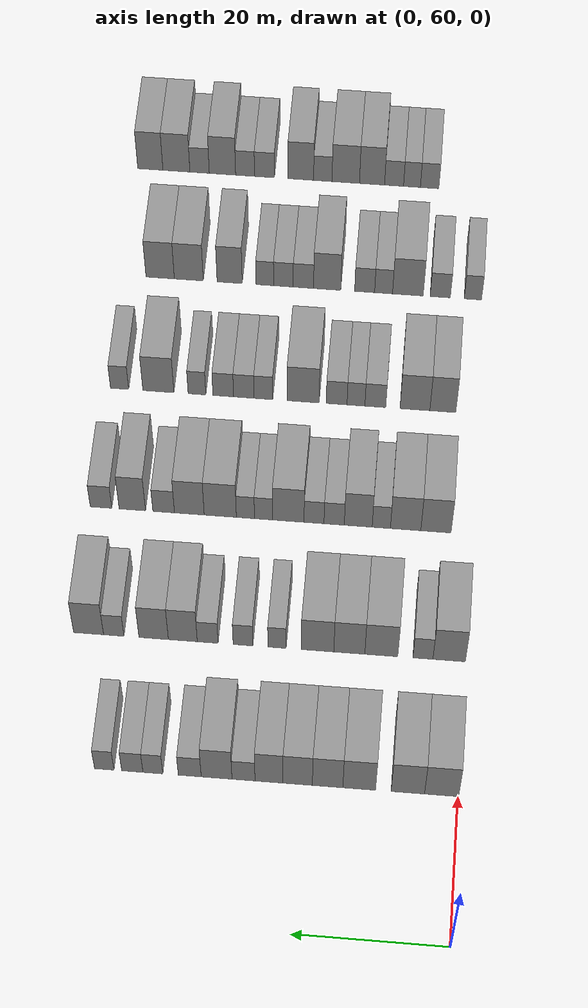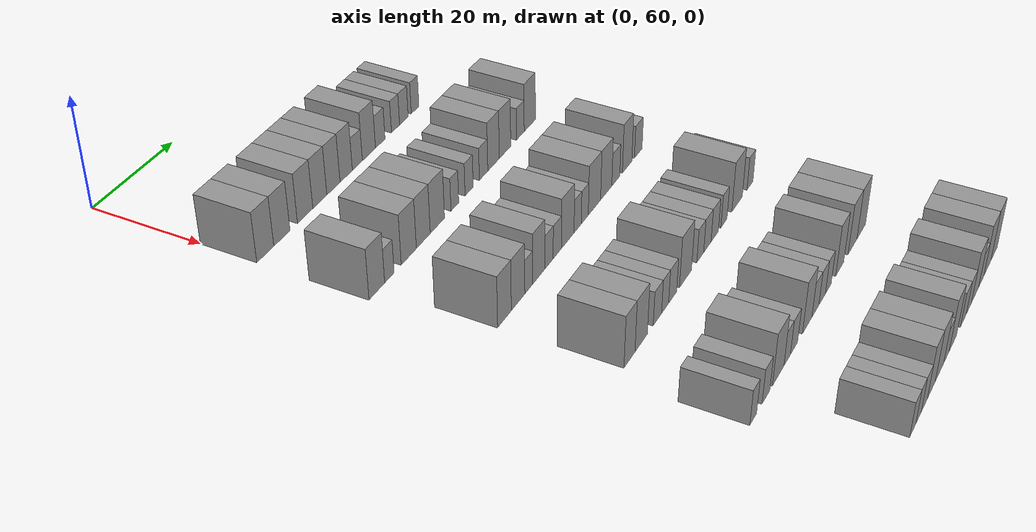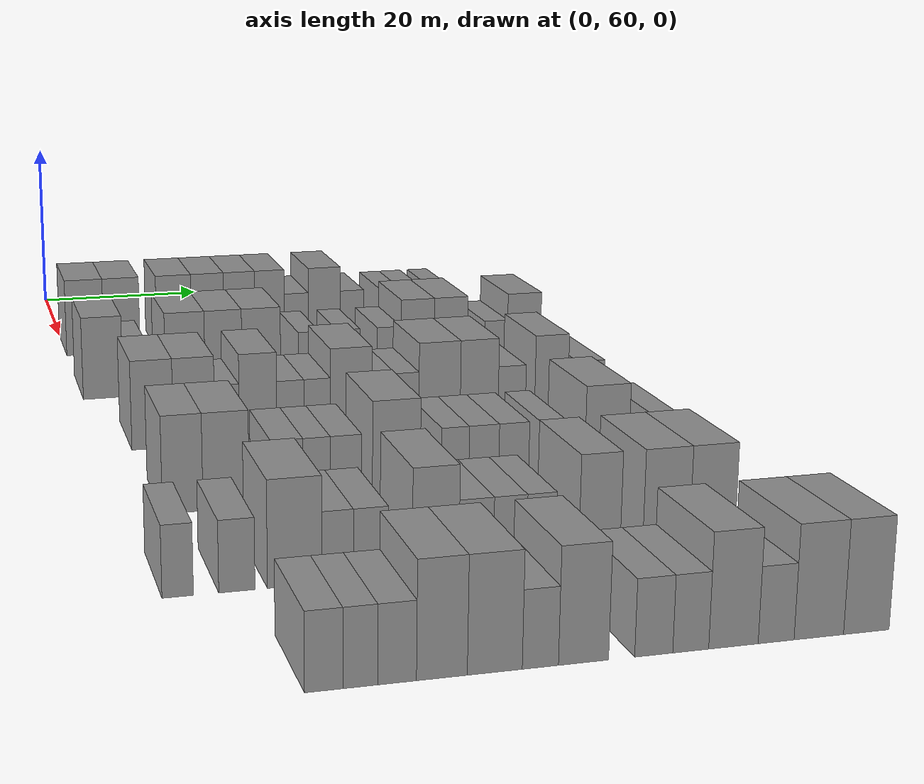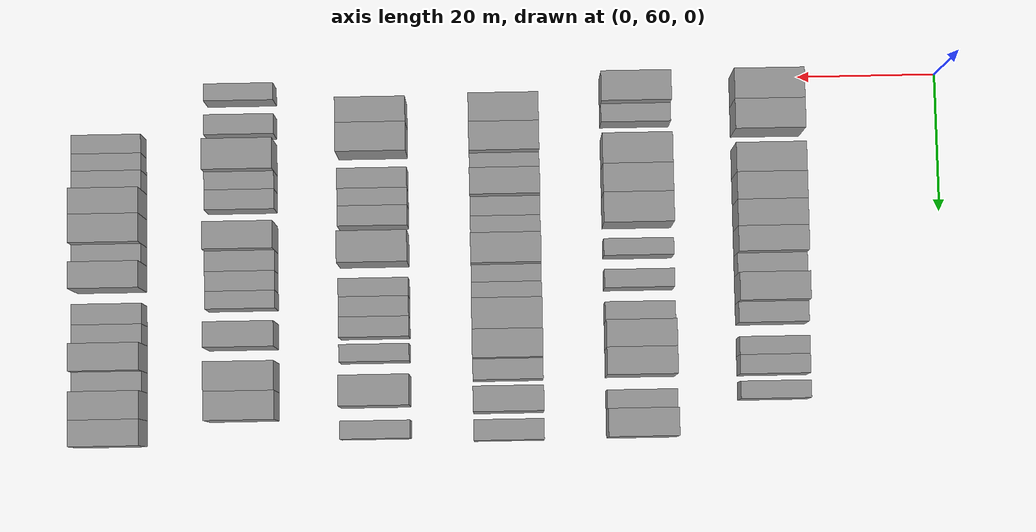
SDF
<sdf version="1.6">
 <world name="default">
  <model name="building_103">
   <static>1</static>
   <pose>25.0000 62.1673 0 0.000000 0.000000 0.000000</pose>
   <link name="link">
    <pose>0 0 4.50 0 0 0</pose>
    <collision name="collision"><geometry><box><size>10.0000 4.3727 9.0000</size></box></geometry></collision>
    <visual name="visual">
     <cast_shadows>0</cast_shadows>
     <geometry><box><size>10.0000 4.3727 9.0000</size></box></geometry>
     <material>
      <script>
       <uri>model://grey_wall/materials/scripts</uri>
       <uri>model://grey_wall/materials/textures</uri>
       <name>vrc/grey_wall</name>
      </script>
     </material>
    </visual>
   </link>
  </model>
  <model name="building_104">
   <static>1</static>
   <pose>25.0000 66.4941 0 0.000000 0.000000 0.000000</pose>
   <link name="link">
    <pose>0 0 4.50 0 0 0</pose>
    <collision name="collision"><geometry><box><size>10.0000 4.2809 9.0000</size></box></geometry></collision>
    <visual name="visual">
     <cast_shadows>0</cast_shadows>
     <geometry><box><size>10.0000 4.2809 9.0000</size></box></geometry>
     <material>
      <script>
       <uri>model://grey_wall/materials/scripts</uri>
       <uri>model://grey_wall/materials/textures</uri>
       <name>vrc/grey_wall</name>
      </script>
     </material>
    </visual>
   </link>
  </model>
  <model name="building_105">
   <static>1</static>
   <pose>25.0000 72.7339 0 0.000000 0.000000 0.000000</pose>
   <link name="link">
    <pose>0 0 4.50 0 0 0</pose>
    <collision name="collision"><geometry><box><size>10.0000 4.1987 9.0000</size></box></geometry></collision>
    <visual name="visual">
     <cast_shadows>0</cast_shadows>
     <geometry><box><size>10.0000 4.1987 9.0000</size></box></geometry>
     <material>
      <script>
       <uri>model://grey_wall/materials/scripts</uri>
       <uri>model://grey_wall/materials/textures</uri>
       <name>vrc/grey_wall</name>
      </script>
     </material>
    </visual>
   </link>
  </model>
  <model name="building_106">
   <static>1</static>
   <pose>25.0000 76.7936 0 0.000000 0.000000 0.000000</pose>
   <link name="link">
    <pose>0 0 4.50 0 0 0</pose>
    <collision name="collision"><geometry><box><size>10.0000 3.9207 9.0000</size></box></geometry></collision>
    <visual name="visual">
     <cast_shadows>0</cast_shadows>
     <geometry><box><size>10.0000 3.9207 9.0000</size></box></geometry>
     <material>
      <script>
       <uri>model://grey_wall/materials/scripts</uri>
       <uri>model://grey_wall/materials/textures</uri>
       <name>vrc/grey_wall</name>
      </script>
     </material>
    </visual>
   </link>
  </model>
  <model name="building_107">
   <static>1</static>
   <pose>25.0000 80.6412 0 0.000000 0.000000 0.000000</pose>
   <link name="link">
    <pose>0 0 4.50 0 0 0</pose>
    <collision name="collision"><geometry><box><size>10.0000 3.7744 9.0000</size></box></geometry></collision>
    <visual name="visual">
     <cast_shadows>0</cast_shadows>
     <geometry><box><size>10.0000 3.7744 9.0000</size></box></geometry>
     <material>
      <script>
       <uri>model://grey_wall/materials/scripts</uri>
       <uri>model://grey_wall/materials/textures</uri>
       <name>vrc/grey_wall</name>
      </script>
     </material>
    </visual>
   </link>
  </model>
  <model name="building_108">
   <static>1</static>
   <pose>25.0000 84.3327 0 0.000000 0.000000 0.000000</pose>
   <link name="link">
    <pose>0 0 4.50 0 0 0</pose>
    <collision name="collision"><geometry><box><size>10.0000 3.6086 9.0000</size></box></geometry></collision>
    <visual name="visual">
     <cast_shadows>0</cast_shadows>
     <geometry><box><size>10.0000 3.6086 9.0000</size></box></geometry>
     <material>
      <script>
       <uri>model://grey_wall/materials/scripts</uri>
       <uri>model://grey_wall/materials/textures</uri>
       <name>vrc/grey_wall</name>
      </script>
     </material>
    </visual>
   </link>
  </model>
  <model name="building_109">
   <static>1</static>
   <pose>25.0000 87.6232 0 0.000000 0.000000 0.000000</pose>
   <link name="link">
    <pose>0 0 3.00 0 0 0</pose>
    <collision name="collision"><geometry><box><size>10.0000 2.9723 6.0000</size></box></geometry></collision>
    <visual name="visual">
     <cast_shadows>0</cast_shadows>
     <geometry><box><size>10.0000 2.9723 6.0000</size></box></geometry>
     <material>
      <script>
       <uri>model://grey_wall/materials/scripts</uri>
       <uri>model://grey_wall/materials/textures</uri>
       <name>vrc/grey_wall</name>
      </script>
     </material>
    </visual>
   </link>
  </model>
  <model name="building_110">
   <static>1</static>
   <pose>25.0000 91.0939 0 0.000000 0.000000 0.000000</pose>
   <link name="link">
    <pose>0 0 4.50 0 0 0</pose>
    <collision name="collision"><geometry><box><size>10.0000 3.9692 9.0000</size></box></geometry></collision>
    <visual name="visual">
     <cast_shadows>0</cast_shadows>
     <geometry><box><size>10.0000 3.9692 9.0000</size></box></geometry>
     <material>
      <script>
       <uri>model://grey_wall/materials/scripts</uri>
       <uri>model://grey_wall/materials/textures</uri>
       <name>vrc/grey_wall</name>
      </script>
     </material>
    </visual>
   </link>
  </model>
  <model name="building_111">
   <static>1</static>
   <pose>25.0000 94.5590 0 0.000000 0.000000 0.000000</pose>
   <link name="link">
    <pose>0 0 3.00 0 0 0</pose>
    <collision name="collision"><geometry><box><size>10.0000 2.9611 6.0000</size></box></geometry></collision>
    <visual name="visual">
     <cast_shadows>0</cast_shadows>
     <geometry><box><size>10.0000 2.9611 6.0000</size></box></geometry>
     <material>
      <script>
       <uri>model://grey_wall/materials/scripts</uri>
       <uri>model://grey_wall/materials/textures</uri>
       <name>vrc/grey_wall</name>
      </script>
     </material>
    </visual>
   </link>
  </model>
  <model name="building_112">
   <static>1</static>
   <pose>25.0000 99.3228 0 0.000000 0.000000 0.000000</pose>
   <link name="link">
    <pose>0 0 3.00 0 0 0</pose>
    <collision name="collision"><geometry><box><size>10.0000 2.5666 6.0000</size></box></geometry></collision>
    <visual name="visual">
     <cast_shadows>0</cast_shadows>
     <geometry><box><size>10.0000 2.5666 6.0000</size></box></geometry>
     <material>
      <script>
       <uri>model://grey_wall/materials/scripts</uri>
       <uri>model://grey_wall/materials/textures</uri>
       <name>vrc/grey_wall</name>
      </script>
     </material>
    </visual>
   </link>
  </model>
  <model name="building_113">
   <static>1</static>
   <pose>25.0000 101.9807 0 0.000000 0.000000 0.000000</pose>
   <link name="link">
    <pose>0 0 3.00 0 0 0</pose>
    <collision name="collision"><geometry><box><size>10.0000 2.7491 6.0000</size></box></geometry></collision>
    <visual name="visual">
     <cast_shadows>0</cast_shadows>
     <geometry><box><size>10.0000 2.7491 6.0000</size></box></geometry>
     <material>
      <script>
       <uri>model://grey_wall/materials/scripts</uri>
       <uri>model://grey_wall/materials/textures</uri>
       <name>vrc/grey_wall</name>
      </script>
     </material>
    </visual>
   </link>
  </model>
  <model name="building_114">
   <static>1</static>
   <pose>25.0000 105.6142 0 0.000000 0.000000 0.000000</pose>
   <link name="link">
    <pose>0 0 3.00 0 0 0</pose>
    <collision name="collision"><geometry><box><size>10.0000 2.5178 6.0000</size></box></geometry></collision>
    <visual name="visual">
     <cast_shadows>0</cast_shadows>
     <geometry><box><size>10.0000 2.5178 6.0000</size></box></geometry>
     <material>
      <script>
       <uri>model://grey_wall/materials/scripts</uri>
       <uri>model://grey_wall/materials/textures</uri>
       <name>vrc/grey_wall</name>
      </script>
     </material>
    </visual>
   </link>
  </model>
  <model name="building_269">
   <static>1</static>
   <pose>44.0000 62.1444 0 0.000000 0.000000 0.000000</pose>
   <link name="link">
    <pose>0 0 4.50 0 0 0</pose>
    <collision name="collision"><geometry><box><size>10.0000 4.2817 9.0000</size></box></geometry></collision>
    <visual name="visual">
     <cast_shadows>0</cast_shadows>
     <geometry><box><size>10.0000 4.2817 9.0000</size></box></geometry>
     <material>
      <script>
       <uri>model://grey_wall/materials/scripts</uri>
       <uri>model://grey_wall/materials/textures</uri>
       <name>vrc/grey_wall</name>
      </script>
     </material>
    </visual>
   </link>
  </model>
  <model name="building_270">
   <static>1</static>
   <pose>44.0000 65.6032 0 0.000000 0.000000 0.000000</pose>
   <link name="link">
    <pose>0 0 3.00 0 0 0</pose>
    <collision name="collision"><geometry><box><size>10.0000 2.6360 6.0000</size></box></geometry></collision>
    <visual name="visual">
     <cast_shadows>0</cast_shadows>
     <geometry><box><size>10.0000 2.6360 6.0000</size></box></geometry>
     <material>
      <script>
       <uri>model://grey_wall/materials/scripts</uri>
       <uri>model://grey_wall/materials/textures</uri>
       <name>vrc/grey_wall</name>
      </script>
     </material>
    </visual>
   </link>
  </model>
  <model name="building_271">
   <static>1</static>
   <pose>44.0000 71.0985 0 0.000000 0.000000 0.000000</pose>
   <link name="link">
    <pose>0 0 4.50 0 0 0</pose>
    <collision name="collision"><geometry><box><size>10.0000 4.3546 9.0000</size></box></geometry></collision>
    <visual name="visual">
     <cast_shadows>0</cast_shadows>
     <geometry><box><size>10.0000 4.3546 9.0000</size></box></geometry>
     <material>
      <script>
       <uri>model://grey_wall/materials/scripts</uri>
       <uri>model://grey_wall/materials/textures</uri>
       <name>vrc/grey_wall</name>
      </script>
     </material>
    </visual>
   </link>
  </model>
  <model name="building_272">
   <static>1</static>
   <pose>44.0000 75.3268 0 0.000000 0.000000 0.000000</pose>
   <link name="link">
    <pose>0 0 4.50 0 0 0</pose>
    <collision name="collision"><geometry><box><size>10.0000 4.1020 9.0000</size></box></geometry></collision>
    <visual name="visual">
     <cast_shadows>0</cast_shadows>
     <geometry><box><size>10.0000 4.1020 9.0000</size></box></geometry>
     <material>
      <script>
       <uri>model://grey_wall/materials/scripts</uri>
       <uri>model://grey_wall/materials/textures</uri>
       <name>vrc/grey_wall</name>
      </script>
     </material>
    </visual>
   </link>
  </model>
  <model name="building_273">
   <static>1</static>
   <pose>44.0000 79.5381 0 0.000000 0.000000 0.000000</pose>
   <link name="link">
    <pose>0 0 4.50 0 0 0</pose>
    <collision name="collision"><geometry><box><size>10.0000 4.3207 9.0000</size></box></geometry></collision>
    <visual name="visual">
     <cast_shadows>0</cast_shadows>
     <geometry><box><size>10.0000 4.3207 9.0000</size></box></geometry>
     <material>
      <script>
       <uri>model://grey_wall/materials/scripts</uri>
       <uri>model://grey_wall/materials/textures</uri>
       <name>vrc/grey_wall</name>
      </script>
     </material>
    </visual>
   </link>
  </model>
  <model name="building_274">
   <static>1</static>
   <pose>44.0000 84.9060 0 0.000000 0.000000 0.000000</pose>
   <link name="link">
    <pose>0 0 3.00 0 0 0</pose>
    <collision name="collision"><geometry><box><size>10.0000 2.4150 6.0000</size></box></geometry></collision>
    <visual name="visual">
     <cast_shadows>0</cast_shadows>
     <geometry><box><size>10.0000 2.4150 6.0000</size></box></geometry>
     <material>
      <script>
       <uri>model://grey_wall/materials/scripts</uri>
       <uri>model://grey_wall/materials/textures</uri>
       <name>vrc/grey_wall</name>
      </script>
     </material>
    </visual>
   </link>
  </model>
  <model name="building_275">
   <static>1</static>
   <pose>44.0000 89.4211 0 0.000000 0.000000 0.000000</pose>
   <link name="link">
    <pose>0 0 3.00 0 0 0</pose>
    <collision name="collision"><geometry><box><size>10.0000 2.6153 6.0000</size></box></geometry></collision>
    <visual name="visual">
     <cast_shadows>0</cast_shadows>
     <geometry><box><size>10.0000 2.6153 6.0000</size></box></geometry>
     <material>
      <script>
       <uri>model://grey_wall/materials/scripts</uri>
       <uri>model://grey_wall/materials/textures</uri>
       <name>vrc/grey_wall</name>
      </script>
     </material>
    </visual>
   </link>
  </model>
  <model name="building_276">
   <static>1</static>
   <pose>44.0000 94.1112 0 0.000000 0.000000 0.000000</pose>
   <link name="link">
    <pose>0 0 3.00 0 0 0</pose>
    <collision name="collision"><geometry><box><size>10.0000 2.7648 6.0000</size></box></geometry></collision>
    <visual name="visual">
     <cast_shadows>0</cast_shadows>
     <geometry><box><size>10.0000 2.7648 6.0000</size></box></geometry>
     <material>
      <script>
       <uri>model://grey_wall/materials/scripts</uri>
       <uri>model://grey_wall/materials/textures</uri>
       <name>vrc/grey_wall</name>
      </script>
     </material>
    </visual>
   </link>
  </model>
  <model name="building_277">
   <static>1</static>
   <pose>44.0000 97.4187 0 0.000000 0.000000 0.000000</pose>
   <link name="link">
    <pose>0 0 4.50 0 0 0</pose>
    <collision name="collision"><geometry><box><size>10.0000 3.8502 9.0000</size></box></geometry></collision>
    <visual name="visual">
     <cast_shadows>0</cast_shadows>
     <geometry><box><size>10.0000 3.8502 9.0000</size></box></geometry>
     <material>
      <script>
       <uri>model://grey_wall/materials/scripts</uri>
       <uri>model://grey_wall/materials/textures</uri>
       <name>vrc/grey_wall</name>
      </script>
     </material>
    </visual>
   </link>
  </model>
  <model name="building_278">
   <static>1</static>
   <pose>44.0000 101.3003 0 0.000000 0.000000 0.000000</pose>
   <link name="link">
    <pose>0 0 4.50 0 0 0</pose>
    <collision name="collision"><geometry><box><size>10.0000 3.9130 9.0000</size></box></geometry></collision>
    <visual name="visual">
     <cast_shadows>0</cast_shadows>
     <geometry><box><size>10.0000 3.9130 9.0000</size></box></geometry>
     <material>
      <script>
       <uri>model://grey_wall/materials/scripts</uri>
       <uri>model://grey_wall/materials/textures</uri>
       <name>vrc/grey_wall</name>
      </script>
     </material>
    </visual>
   </link>
  </model>
  <model name="building_279">
   <static>1</static>
   <pose>44.0000 106.6169 0 0.000000 0.000000 0.000000</pose>
   <link name="link">
    <pose>0 0 3.00 0 0 0</pose>
    <collision name="collision"><geometry><box><size>10.0000 2.7202 6.0000</size></box></geometry></collision>
    <visual name="visual">
     <cast_shadows>0</cast_shadows>
     <geometry><box><size>10.0000 2.7202 6.0000</size></box></geometry>
     <material>
      <script>
       <uri>model://grey_wall/materials/scripts</uri>
       <uri>model://grey_wall/materials/textures</uri>
       <name>vrc/grey_wall</name>
      </script>
     </material>
    </visual>
   </link>
  </model>
  <model name="building_280">
   <static>1</static>
   <pose>44.0000 109.9729 0 0.000000 0.000000 0.000000</pose>
   <link name="link">
    <pose>0 0 4.50 0 0 0</pose>
    <collision name="collision"><geometry><box><size>10.0000 3.9918 9.0000</size></box></geometry></collision>
    <visual name="visual">
     <cast_shadows>0</cast_shadows>
     <geometry><box><size>10.0000 3.9918 9.0000</size></box></geometry>
     <material>
      <script>
       <uri>model://grey_wall/materials/scripts</uri>
       <uri>model://grey_wall/materials/textures</uri>
       <name>vrc/grey_wall</name>
      </script>
     </material>
    </visual>
   </link>
  </model>
  <model name="building_446">
   <static>1</static>
   <pose>63.0000 64.8793 0 0.000000 0.000000 0.000000</pose>
   <link name="link">
    <pose>0 0 4.50 0 0 0</pose>
    <collision name="collision"><geometry><box><size>10.0000 4.1039 9.0000</size></box></geometry></collision>
    <visual name="visual">
     <cast_shadows>0</cast_shadows>
     <geometry><box><size>10.0000 4.1039 9.0000</size></box></geometry>
     <material>
      <script>
       <uri>model://grey_wall/materials/scripts</uri>
       <uri>model://grey_wall/materials/textures</uri>
       <name>vrc/grey_wall</name>
      </script>
     </material>
    </visual>
   </link>
  </model>
  <model name="building_447">
   <static>1</static>
   <pose>63.0000 68.9979 0 0.000000 0.000000 0.000000</pose>
   <link name="link">
    <pose>0 0 4.50 0 0 0</pose>
    <collision name="collision"><geometry><box><size>10.0000 4.1334 9.0000</size></box></geometry></collision>
    <visual name="visual">
     <cast_shadows>0</cast_shadows>
     <geometry><box><size>10.0000 4.1334 9.0000</size></box></geometry>
     <material>
      <script>
       <uri>model://grey_wall/materials/scripts</uri>
       <uri>model://grey_wall/materials/textures</uri>
       <name>vrc/grey_wall</name>
      </script>
     </material>
    </visual>
   </link>
  </model>
  <model name="building_448">
   <static>1</static>
   <pose>63.0000 72.3037 0 0.000000 0.000000 0.000000</pose>
   <link name="link">
    <pose>0 0 3.00 0 0 0</pose>
    <collision name="collision"><geometry><box><size>10.0000 2.4780 6.0000</size></box></geometry></collision>
    <visual name="visual">
     <cast_shadows>0</cast_shadows>
     <geometry><box><size>10.0000 2.4780 6.0000</size></box></geometry>
     <material>
      <script>
       <uri>model://grey_wall/materials/scripts</uri>
       <uri>model://grey_wall/materials/textures</uri>
       <name>vrc/grey_wall</name>
      </script>
     </material>
    </visual>
   </link>
  </model>
  <model name="building_449">
   <static>1</static>
   <pose>63.0000 75.4395 0 0.000000 0.000000 0.000000</pose>
   <link name="link">
    <pose>0 0 4.50 0 0 0</pose>
    <collision name="collision"><geometry><box><size>10.0000 3.7937 9.0000</size></box></geometry></collision>
    <visual name="visual">
     <cast_shadows>0</cast_shadows>
     <geometry><box><size>10.0000 3.7937 9.0000</size></box></geometry>
     <material>
      <script>
       <uri>model://grey_wall/materials/scripts</uri>
       <uri>model://grey_wall/materials/textures</uri>
       <name>vrc/grey_wall</name>
      </script>
     </material>
    </visual>
   </link>
  </model>
  <model name="building_450">
   <static>1</static>
   <pose>63.0000 78.7199 0 0.000000 0.000000 0.000000</pose>
   <link name="link">
    <pose>0 0 3.00 0 0 0</pose>
    <collision name="collision"><geometry><box><size>10.0000 2.7670 6.0000</size></box></geometry></collision>
    <visual name="visual">
     <cast_shadows>0</cast_shadows>
     <geometry><box><size>10.0000 2.7670 6.0000</size></box></geometry>
     <material>
      <script>
       <uri>model://grey_wall/materials/scripts</uri>
       <uri>model://grey_wall/materials/textures</uri>
       <name>vrc/grey_wall</name>
      </script>
     </material>
    </visual>
   </link>
  </model>
  <model name="building_451">
   <static>1</static>
   <pose>63.0000 81.4618 0 0.000000 0.000000 0.000000</pose>
   <link name="link">
    <pose>0 0 3.00 0 0 0</pose>
    <collision name="collision"><geometry><box><size>10.0000 2.7170 6.0000</size></box></geometry></collision>
    <visual name="visual">
     <cast_shadows>0</cast_shadows>
     <geometry><box><size>10.0000 2.7170 6.0000</size></box></geometry>
     <material>
      <script>
       <uri>model://grey_wall/materials/scripts</uri>
       <uri>model://grey_wall/materials/textures</uri>
       <name>vrc/grey_wall</name>
      </script>
     </material>
    </visual>
   </link>
  </model>
  <model name="building_452">
   <static>1</static>
   <pose>63.0000 84.9643 0 0.000000 0.000000 0.000000</pose>
   <link name="link">
    <pose>0 0 4.50 0 0 0</pose>
    <collision name="collision"><geometry><box><size>10.0000 4.2878 9.0000</size></box></geometry></collision>
    <visual name="visual">
     <cast_shadows>0</cast_shadows>
     <geometry><box><size>10.0000 4.2878 9.0000</size></box></geometry>
     <material>
      <script>
       <uri>model://grey_wall/materials/scripts</uri>
       <uri>model://grey_wall/materials/textures</uri>
       <name>vrc/grey_wall</name>
      </script>
     </material>
    </visual>
   </link>
  </model>
  <model name="building_453">
   <static>1</static>
   <pose>63.0000 88.3450 0 0.000000 0.000000 0.000000</pose>
   <link name="link">
    <pose>0 0 3.00 0 0 0</pose>
    <collision name="collision"><geometry><box><size>10.0000 2.4737 6.0000</size></box></geometry></collision>
    <visual name="visual">
     <cast_shadows>0</cast_shadows>
     <geometry><box><size>10.0000 2.4737 6.0000</size></box></geometry>
     <material>
      <script>
       <uri>model://grey_wall/materials/scripts</uri>
       <uri>model://grey_wall/materials/textures</uri>
       <name>vrc/grey_wall</name>
      </script>
     </material>
    </visual>
   </link>
  </model>
  <model name="building_454">
   <static>1</static>
   <pose>63.0000 90.8206 0 0.000000 0.000000 0.000000</pose>
   <link name="link">
    <pose>0 0 3.00 0 0 0</pose>
    <collision name="collision"><geometry><box><size>10.0000 2.4775 6.0000</size></box></geometry></collision>
    <visual name="visual">
     <cast_shadows>0</cast_shadows>
     <geometry><box><size>10.0000 2.4775 6.0000</size></box></geometry>
     <material>
      <script>
       <uri>model://grey_wall/materials/scripts</uri>
       <uri>model://grey_wall/materials/textures</uri>
       <name>vrc/grey_wall</name>
      </script>
     </material>
    </visual>
   </link>
  </model>
  <model name="building_455">
   <static>1</static>
   <pose>63.0000 94.2594 0 0.000000 0.000000 0.000000</pose>
   <link name="link">
    <pose>0 0 4.50 0 0 0</pose>
    <collision name="collision"><geometry><box><size>10.0000 4.4001 9.0000</size></box></geometry></collision>
    <visual name="visual">
     <cast_shadows>0</cast_shadows>
     <geometry><box><size>10.0000 4.4001 9.0000</size></box></geometry>
     <material>
      <script>
       <uri>model://grey_wall/materials/scripts</uri>
       <uri>model://grey_wall/materials/textures</uri>
       <name>vrc/grey_wall</name>
      </script>
     </material>
    </visual>
   </link>
  </model>
  <model name="building_456">
   <static>1</static>
   <pose>63.0000 98.4944 0 0.000000 0.000000 0.000000</pose>
   <link name="link">
    <pose>0 0 4.50 0 0 0</pose>
    <collision name="collision"><geometry><box><size>10.0000 4.0699 9.0000</size></box></geometry></collision>
    <visual name="visual">
     <cast_shadows>0</cast_shadows>
     <geometry><box><size>10.0000 4.0699 9.0000</size></box></geometry>
     <material>
      <script>
       <uri>model://grey_wall/materials/scripts</uri>
       <uri>model://grey_wall/materials/textures</uri>
       <name>vrc/grey_wall</name>
      </script>
     </material>
    </visual>
   </link>
  </model>
  <model name="building_457">
   <static>1</static>
   <pose>63.0000 102.0103 0 0.000000 0.000000 0.000000</pose>
   <link name="link">
    <pose>0 0 3.00 0 0 0</pose>
    <collision name="collision"><geometry><box><size>10.0000 2.9620 6.0000</size></box></geometry></collision>
    <visual name="visual">
     <cast_shadows>0</cast_shadows>
     <geometry><box><size>10.0000 2.9620 6.0000</size></box></geometry>
     <material>
      <script>
       <uri>model://grey_wall/materials/scripts</uri>
       <uri>model://grey_wall/materials/textures</uri>
       <name>vrc/grey_wall</name>
      </script>
     </material>
    </visual>
   </link>
  </model>
  <model name="building_458">
   <static>1</static>
   <pose>63.0000 106.3024 0 0.000000 0.000000 0.000000</pose>
   <link name="link">
    <pose>0 0 4.50 0 0 0</pose>
    <collision name="collision"><geometry><box><size>10.0000 3.6221 9.0000</size></box></geometry></collision>
    <visual name="visual">
     <cast_shadows>0</cast_shadows>
     <geometry><box><size>10.0000 3.6221 9.0000</size></box></geometry>
     <material>
      <script>
       <uri>model://grey_wall/materials/scripts</uri>
       <uri>model://grey_wall/materials/textures</uri>
       <name>vrc/grey_wall</name>
      </script>
     </material>
    </visual>
   </link>
  </model>
  <model name="building_459">
   <static>1</static>
   <pose>63.0000 110.5969 0 0.000000 0.000000 0.000000</pose>
   <link name="link">
    <pose>0 0 3.00 0 0 0</pose>
    <collision name="collision"><geometry><box><size>10.0000 2.9669 6.0000</size></box></geometry></collision>
    <visual name="visual">
     <cast_shadows>0</cast_shadows>
     <geometry><box><size>10.0000 2.9669 6.0000</size></box></geometry>
     <material>
      <script>
       <uri>model://grey_wall/materials/scripts</uri>
       <uri>model://grey_wall/materials/textures</uri>
       <name>vrc/grey_wall</name>
      </script>
     </material>
    </visual>
   </link>
  </model>
  <model name="building_620">
   <static>1</static>
   <pose>82.0000 64.9065 0 0.000000 0.000000 0.000000</pose>
   <link name="link">
    <pose>0 0 4.50 0 0 0</pose>
    <collision name="collision"><geometry><box><size>10.0000 3.6197 9.0000</size></box></geometry></collision>
    <visual name="visual">
     <cast_shadows>0</cast_shadows>
     <geometry><box><size>10.0000 3.6197 9.0000</size></box></geometry>
     <material>
      <script>
       <uri>model://grey_wall/materials/scripts</uri>
       <uri>model://grey_wall/materials/textures</uri>
       <name>vrc/grey_wall</name>
      </script>
     </material>
    </visual>
   </link>
  </model>
  <model name="building_621">
   <static>1</static>
   <pose>82.0000 68.7985 0 0.000000 0.000000 0.000000</pose>
   <link name="link">
    <pose>0 0 4.50 0 0 0</pose>
    <collision name="collision"><geometry><box><size>10.0000 4.1642 9.0000</size></box></geometry></collision>
    <visual name="visual">
     <cast_shadows>0</cast_shadows>
     <geometry><box><size>10.0000 4.1642 9.0000</size></box></geometry>
     <material>
      <script>
       <uri>model://grey_wall/materials/scripts</uri>
       <uri>model://grey_wall/materials/textures</uri>
       <name>vrc/grey_wall</name>
      </script>
     </material>
    </visual>
   </link>
  </model>
  <model name="building_622">
   <static>1</static>
   <pose>82.0000 74.3374 0 0.000000 0.000000 0.000000</pose>
   <link name="link">
    <pose>0 0 3.00 0 0 0</pose>
    <collision name="collision"><geometry><box><size>10.0000 2.9136 6.0000</size></box></geometry></collision>
    <visual name="visual">
     <cast_shadows>0</cast_shadows>
     <geometry><box><size>10.0000 2.9136 6.0000</size></box></geometry>
     <material>
      <script>
       <uri>model://grey_wall/materials/scripts</uri>
       <uri>model://grey_wall/materials/textures</uri>
       <name>vrc/grey_wall</name>
      </script>
     </material>
    </visual>
   </link>
  </model>
  <model name="building_623">
   <static>1</static>
   <pose>82.0000 77.0466 0 0.000000 0.000000 0.000000</pose>
   <link name="link">
    <pose>0 0 3.00 0 0 0</pose>
    <collision name="collision"><geometry><box><size>10.0000 2.5049 6.0000</size></box></geometry></collision>
    <visual name="visual">
     <cast_shadows>0</cast_shadows>
     <geometry><box><size>10.0000 2.5049 6.0000</size></box></geometry>
     <material>
      <script>
       <uri>model://grey_wall/materials/scripts</uri>
       <uri>model://grey_wall/materials/textures</uri>
       <name>vrc/grey_wall</name>
      </script>
     </material>
    </visual>
   </link>
  </model>
  <model name="building_624">
   <static>1</static>
   <pose>82.0000 79.7543 0 0.000000 0.000000 0.000000</pose>
   <link name="link">
    <pose>0 0 3.00 0 0 0</pose>
    <collision name="collision"><geometry><box><size>10.0000 2.9105 6.0000</size></box></geometry></collision>
    <visual name="visual">
     <cast_shadows>0</cast_shadows>
     <geometry><box><size>10.0000 2.9105 6.0000</size></box></geometry>
     <material>
      <script>
       <uri>model://grey_wall/materials/scripts</uri>
       <uri>model://grey_wall/materials/textures</uri>
       <name>vrc/grey_wall</name>
      </script>
     </material>
    </visual>
   </link>
  </model>
  <model name="building_625">
   <static>1</static>
   <pose>82.0000 84.4580 0 0.000000 0.000000 0.000000</pose>
   <link name="link">
    <pose>0 0 4.50 0 0 0</pose>
    <collision name="collision"><geometry><box><size>10.0000 4.4968 9.0000</size></box></geometry></collision>
    <visual name="visual">
     <cast_shadows>0</cast_shadows>
     <geometry><box><size>10.0000 4.4968 9.0000</size></box></geometry>
     <material>
      <script>
       <uri>model://grey_wall/materials/scripts</uri>
       <uri>model://grey_wall/materials/textures</uri>
       <name>vrc/grey_wall</name>
      </script>
     </material>
    </visual>
   </link>
  </model>
  <model name="building_626">
   <static>1</static>
   <pose>82.0000 90.0161 0 0.000000 0.000000 0.000000</pose>
   <link name="link">
    <pose>0 0 3.00 0 0 0</pose>
    <collision name="collision"><geometry><box><size>10.0000 2.6194 6.0000</size></box></geometry></collision>
    <visual name="visual">
     <cast_shadows>0</cast_shadows>
     <geometry><box><size>10.0000 2.6194 6.0000</size></box></geometry>
     <material>
      <script>
       <uri>model://grey_wall/materials/scripts</uri>
       <uri>model://grey_wall/materials/textures</uri>
       <name>vrc/grey_wall</name>
      </script>
     </material>
    </visual>
   </link>
  </model>
  <model name="building_627">
   <static>1</static>
   <pose>82.0000 92.7649 0 0.000000 0.000000 0.000000</pose>
   <link name="link">
    <pose>0 0 3.00 0 0 0</pose>
    <collision name="collision"><geometry><box><size>10.0000 2.8783 6.0000</size></box></geometry></collision>
    <visual name="visual">
     <cast_shadows>0</cast_shadows>
     <geometry><box><size>10.0000 2.8783 6.0000</size></box></geometry>
     <material>
      <script>
       <uri>model://grey_wall/materials/scripts</uri>
       <uri>model://grey_wall/materials/textures</uri>
       <name>vrc/grey_wall</name>
      </script>
     </material>
    </visual>
   </link>
  </model>
  <model name="building_628">
   <static>1</static>
   <pose>82.0000 95.6585 0 0.000000 0.000000 0.000000</pose>
   <link name="link">
    <pose>0 0 3.00 0 0 0</pose>
    <collision name="collision"><geometry><box><size>10.0000 2.9089 6.0000</size></box></geometry></collision>
    <visual name="visual">
     <cast_shadows>0</cast_shadows>
     <geometry><box><size>10.0000 2.9089 6.0000</size></box></geometry>
     <material>
      <script>
       <uri>model://grey_wall/materials/scripts</uri>
       <uri>model://grey_wall/materials/textures</uri>
       <name>vrc/grey_wall</name>
      </script>
     </material>
    </visual>
   </link>
  </model>
  <model name="building_629">
   <static>1</static>
   <pose>82.0000 99.3581 0 0.000000 0.000000 0.000000</pose>
   <link name="link">
    <pose>0 0 3.00 0 0 0</pose>
    <collision name="collision"><geometry><box><size>10.0000 2.4903 6.0000</size></box></geometry></collision>
    <visual name="visual">
     <cast_shadows>0</cast_shadows>
     <geometry><box><size>10.0000 2.4903 6.0000</size></box></geometry>
     <material>
      <script>
       <uri>model://grey_wall/materials/scripts</uri>
       <uri>model://grey_wall/materials/textures</uri>
       <name>vrc/grey_wall</name>
      </script>
     </material>
    </visual>
   </link>
  </model>
  <model name="building_630">
   <static>1</static>
   <pose>82.0000 104.7890 0 0.000000 0.000000 0.000000</pose>
   <link name="link">
    <pose>0 0 4.50 0 0 0</pose>
    <collision name="collision"><geometry><box><size>10.0000 4.3715 9.0000</size></box></geometry></collision>
    <visual name="visual">
     <cast_shadows>0</cast_shadows>
     <geometry><box><size>10.0000 4.3715 9.0000</size></box></geometry>
     <material>
      <script>
       <uri>model://grey_wall/materials/scripts</uri>
       <uri>model://grey_wall/materials/textures</uri>
       <name>vrc/grey_wall</name>
      </script>
     </material>
    </visual>
   </link>
  </model>
  <model name="building_631">
   <static>1</static>
   <pose>82.0000 110.2574 0 0.000000 0.000000 0.000000</pose>
   <link name="link">
    <pose>0 0 3.00 0 0 0</pose>
    <collision name="collision"><geometry><box><size>10.0000 2.5652 6.0000</size></box></geometry></collision>
    <visual name="visual">
     <cast_shadows>0</cast_shadows>
     <geometry><box><size>10.0000 2.5652 6.0000</size></box></geometry>
     <material>
      <script>
       <uri>model://grey_wall/materials/scripts</uri>
       <uri>model://grey_wall/materials/textures</uri>
       <name>vrc/grey_wall</name>
      </script>
     </material>
    </visual>
   </link>
  </model>
  <model name="building_793">
   <static>1</static>
   <pose>101.0000 61.5672 0 0.000000 0.000000 0.000000</pose>
   <link name="link">
    <pose>0 0 3.00 0 0 0</pose>
    <collision name="collision"><geometry><box><size>10.0000 2.4685 6.0000</size></box></geometry></collision>
    <visual name="visual">
     <cast_shadows>0</cast_shadows>
     <geometry><box><size>10.0000 2.4685 6.0000</size></box></geometry>
     <material>
      <script>
       <uri>model://grey_wall/materials/scripts</uri>
       <uri>model://grey_wall/materials/textures</uri>
       <name>vrc/grey_wall</name>
      </script>
     </material>
    </visual>
   </link>
  </model>
  <model name="building_794">
   <static>1</static>
   <pose>101.0000 66.2450 0 0.000000 0.000000 0.000000</pose>
   <link name="link">
    <pose>0 0 3.00 0 0 0</pose>
    <collision name="collision"><geometry><box><size>10.0000 2.8871 6.0000</size></box></geometry></collision>
    <visual name="visual">
     <cast_shadows>0</cast_shadows>
     <geometry><box><size>10.0000 2.8871 6.0000</size></box></geometry>
     <material>
      <script>
       <uri>model://grey_wall/materials/scripts</uri>
       <uri>model://grey_wall/materials/textures</uri>
       <name>vrc/grey_wall</name>
      </script>
     </material>
    </visual>
   </link>
  </model>
  <model name="building_795">
   <static>1</static>
   <pose>101.0000 70.8891 0 0.000000 0.000000 0.000000</pose>
   <link name="link">
    <pose>0 0 4.50 0 0 0</pose>
    <collision name="collision"><geometry><box><size>10.0000 4.4011 9.0000</size></box></geometry></collision>
    <visual name="visual">
     <cast_shadows>0</cast_shadows>
     <geometry><box><size>10.0000 4.4011 9.0000</size></box></geometry>
     <material>
      <script>
       <uri>model://grey_wall/materials/scripts</uri>
       <uri>model://grey_wall/materials/textures</uri>
       <name>vrc/grey_wall</name>
      </script>
     </material>
    </visual>
   </link>
  </model>
  <model name="building_796">
   <static>1</static>
   <pose>101.0000 74.3769 0 0.000000 0.000000 0.000000</pose>
   <link name="link">
    <pose>0 0 3.00 0 0 0</pose>
    <collision name="collision"><geometry><box><size>10.0000 2.5745 6.0000</size></box></geometry></collision>
    <visual name="visual">
     <cast_shadows>0</cast_shadows>
     <geometry><box><size>10.0000 2.5745 6.0000</size></box></geometry>
     <material>
      <script>
       <uri>model://grey_wall/materials/scripts</uri>
       <uri>model://grey_wall/materials/textures</uri>
       <name>vrc/grey_wall</name>
      </script>
     </material>
    </visual>
   </link>
  </model>
  <model name="building_797">
   <static>1</static>
   <pose>101.0000 77.0987 0 0.000000 0.000000 0.000000</pose>
   <link name="link">
    <pose>0 0 3.00 0 0 0</pose>
    <collision name="collision"><geometry><box><size>10.0000 2.8692 6.0000</size></box></geometry></collision>
    <visual name="visual">
     <cast_shadows>0</cast_shadows>
     <geometry><box><size>10.0000 2.8692 6.0000</size></box></geometry>
     <material>
      <script>
       <uri>model://grey_wall/materials/scripts</uri>
       <uri>model://grey_wall/materials/textures</uri>
       <name>vrc/grey_wall</name>
      </script>
     </material>
    </visual>
   </link>
  </model>
  <model name="building_798">
   <static>1</static>
   <pose>101.0000 82.4894 0 0.000000 0.000000 0.000000</pose>
   <link name="link">
    <pose>0 0 4.50 0 0 0</pose>
    <collision name="collision"><geometry><box><size>10.0000 3.9121 9.0000</size></box></geometry></collision>
    <visual name="visual">
     <cast_shadows>0</cast_shadows>
     <geometry><box><size>10.0000 3.9121 9.0000</size></box></geometry>
     <material>
      <script>
       <uri>model://grey_wall/materials/scripts</uri>
       <uri>model://grey_wall/materials/textures</uri>
       <name>vrc/grey_wall</name>
      </script>
     </material>
    </visual>
   </link>
  </model>
  <model name="building_799">
   <static>1</static>
   <pose>101.0000 85.9104 0 0.000000 0.000000 0.000000</pose>
   <link name="link">
    <pose>0 0 3.00 0 0 0</pose>
    <collision name="collision"><geometry><box><size>10.0000 2.9300 6.0000</size></box></geometry></collision>
    <visual name="visual">
     <cast_shadows>0</cast_shadows>
     <geometry><box><size>10.0000 2.9300 6.0000</size></box></geometry>
     <material>
      <script>
       <uri>model://grey_wall/materials/scripts</uri>
       <uri>model://grey_wall/materials/textures</uri>
       <name>vrc/grey_wall</name>
      </script>
     </material>
    </visual>
   </link>
  </model>
  <model name="building_800">
   <static>1</static>
   <pose>101.0000 88.7899 0 0.000000 0.000000 0.000000</pose>
   <link name="link">
    <pose>0 0 3.00 0 0 0</pose>
    <collision name="collision"><geometry><box><size>10.0000 2.8289 6.0000</size></box></geometry></collision>
    <visual name="visual">
     <cast_shadows>0</cast_shadows>
     <geometry><box><size>10.0000 2.8289 6.0000</size></box></geometry>
     <material>
      <script>
       <uri>model://grey_wall/materials/scripts</uri>
       <uri>model://grey_wall/materials/textures</uri>
       <name>vrc/grey_wall</name>
      </script>
     </material>
    </visual>
   </link>
  </model>
  <model name="building_801">
   <static>1</static>
   <pose>101.0000 91.4685 0 0.000000 0.000000 0.000000</pose>
   <link name="link">
    <pose>0 0 3.00 0 0 0</pose>
    <collision name="collision"><geometry><box><size>10.0000 2.5284 6.0000</size></box></geometry></collision>
    <visual name="visual">
     <cast_shadows>0</cast_shadows>
     <geometry><box><size>10.0000 2.5284 6.0000</size></box></geometry>
     <material>
      <script>
       <uri>model://grey_wall/materials/scripts</uri>
       <uri>model://grey_wall/materials/textures</uri>
       <name>vrc/grey_wall</name>
      </script>
     </material>
    </visual>
   </link>
  </model>
  <model name="building_802">
   <static>1</static>
   <pose>101.0000 96.5465 0 0.000000 0.000000 0.000000</pose>
   <link name="link">
    <pose>0 0 4.50 0 0 0</pose>
    <collision name="collision"><geometry><box><size>10.0000 3.6277 9.0000</size></box></geometry></collision>
    <visual name="visual">
     <cast_shadows>0</cast_shadows>
     <geometry><box><size>10.0000 3.6277 9.0000</size></box></geometry>
     <material>
      <script>
       <uri>model://grey_wall/materials/scripts</uri>
       <uri>model://grey_wall/materials/textures</uri>
       <name>vrc/grey_wall</name>
      </script>
     </material>
    </visual>
   </link>
  </model>
  <model name="building_803">
   <static>1</static>
   <pose>101.0000 102.4520 0 0.000000 0.000000 0.000000</pose>
   <link name="link">
    <pose>0 0 4.50 0 0 0</pose>
    <collision name="collision"><geometry><box><size>10.0000 4.1833 9.0000</size></box></geometry></collision>
    <visual name="visual">
     <cast_shadows>0</cast_shadows>
     <geometry><box><size>10.0000 4.1833 9.0000</size></box></geometry>
     <material>
      <script>
       <uri>model://grey_wall/materials/scripts</uri>
       <uri>model://grey_wall/materials/textures</uri>
       <name>vrc/grey_wall</name>
      </script>
     </material>
    </visual>
   </link>
  </model>
  <model name="building_804">
   <static>1</static>
   <pose>101.0000 106.5949 0 0.000000 0.000000 0.000000</pose>
   <link name="link">
    <pose>0 0 4.50 0 0 0</pose>
    <collision name="collision"><geometry><box><size>10.0000 4.1025 9.0000</size></box></geometry></collision>
    <visual name="visual">
     <cast_shadows>0</cast_shadows>
     <geometry><box><size>10.0000 4.1025 9.0000</size></box></geometry>
     <material>
      <script>
       <uri>model://grey_wall/materials/scripts</uri>
       <uri>model://grey_wall/materials/textures</uri>
       <name>vrc/grey_wall</name>
      </script>
     </material>
    </visual>
   </link>
  </model>
  <model name="building_968">
   <static>1</static>
   <pose>120.0000 68.7895 0 0.000000 0.000000 0.000000</pose>
   <link name="link">
    <pose>0 0 3.00 0 0 0</pose>
    <collision name="collision"><geometry><box><size>10.0000 2.7135 6.0000</size></box></geometry></collision>
    <visual name="visual">
     <cast_shadows>0</cast_shadows>
     <geometry><box><size>10.0000 2.7135 6.0000</size></box></geometry>
     <material>
      <script>
       <uri>model://grey_wall/materials/scripts</uri>
       <uri>model://grey_wall/materials/textures</uri>
       <name>vrc/grey_wall</name>
      </script>
     </material>
    </visual>
   </link>
  </model>
  <model name="building_969">
   <static>1</static>
   <pose>120.0000 71.3852 0 0.000000 0.000000 0.000000</pose>
   <link name="link">
    <pose>0 0 3.00 0 0 0</pose>
    <collision name="collision"><geometry><box><size>10.0000 2.4778 6.0000</size></box></geometry></collision>
    <visual name="visual">
     <cast_shadows>0</cast_shadows>
     <geometry><box><size>10.0000 2.4778 6.0000</size></box></geometry>
     <material>
      <script>
       <uri>model://grey_wall/materials/scripts</uri>
       <uri>model://grey_wall/materials/textures</uri>
       <name>vrc/grey_wall</name>
      </script>
     </material>
    </visual>
   </link>
  </model>
  <model name="building_970">
   <static>1</static>
   <pose>120.0000 74.0225 0 0.000000 0.000000 0.000000</pose>
   <link name="link">
    <pose>0 0 3.00 0 0 0</pose>
    <collision name="collision"><geometry><box><size>10.0000 2.7969 6.0000</size></box></geometry></collision>
    <visual name="visual">
     <cast_shadows>0</cast_shadows>
     <geometry><box><size>10.0000 2.7969 6.0000</size></box></geometry>
     <material>
      <script>
       <uri>model://grey_wall/materials/scripts</uri>
       <uri>model://grey_wall/materials/textures</uri>
       <name>vrc/grey_wall</name>
      </script>
     </material>
    </visual>
   </link>
  </model>
  <model name="building_971">
   <static>1</static>
   <pose>120.0000 77.2752 0 0.000000 0.000000 0.000000</pose>
   <link name="link">
    <pose>0 0 4.50 0 0 0</pose>
    <collision name="collision"><geometry><box><size>10.0000 3.7085 9.0000</size></box></geometry></collision>
    <visual name="visual">
     <cast_shadows>0</cast_shadows>
     <geometry><box><size>10.0000 3.7085 9.0000</size></box></geometry>
     <material>
      <script>
       <uri>model://grey_wall/materials/scripts</uri>
       <uri>model://grey_wall/materials/textures</uri>
       <name>vrc/grey_wall</name>
      </script>
     </material>
    </visual>
   </link>
  </model>
  <model name="building_972">
   <static>1</static>
   <pose>120.0000 81.1595 0 0.000000 0.000000 0.000000</pose>
   <link name="link">
    <pose>0 0 4.50 0 0 0</pose>
    <collision name="collision"><geometry><box><size>10.0000 4.0600 9.0000</size></box></geometry></collision>
    <visual name="visual">
     <cast_shadows>0</cast_shadows>
     <geometry><box><size>10.0000 4.0600 9.0000</size></box></geometry>
     <material>
      <script>
       <uri>model://grey_wall/materials/scripts</uri>
       <uri>model://grey_wall/materials/textures</uri>
       <name>vrc/grey_wall</name>
      </script>
     </material>
    </visual>
   </link>
  </model>
  <model name="building_973">
   <static>1</static>
   <pose>120.0000 84.5450 0 0.000000 0.000000 0.000000</pose>
   <link name="link">
    <pose>0 0 3.00 0 0 0</pose>
    <collision name="collision"><geometry><box><size>10.0000 2.7111 6.0000</size></box></geometry></collision>
    <visual name="visual">
     <cast_shadows>0</cast_shadows>
     <geometry><box><size>10.0000 2.7111 6.0000</size></box></geometry>
     <material>
      <script>
       <uri>model://grey_wall/materials/scripts</uri>
       <uri>model://grey_wall/materials/textures</uri>
       <name>vrc/grey_wall</name>
      </script>
     </material>
    </visual>
   </link>
  </model>
  <model name="building_974">
   <static>1</static>
   <pose>120.0000 87.8004 0 0.000000 0.000000 0.000000</pose>
   <link name="link">
    <pose>0 0 4.50 0 0 0</pose>
    <collision name="collision"><geometry><box><size>10.0000 3.7995 9.0000</size></box></geometry></collision>
    <visual name="visual">
     <cast_shadows>0</cast_shadows>
     <geometry><box><size>10.0000 3.7995 9.0000</size></box></geometry>
     <material>
      <script>
       <uri>model://grey_wall/materials/scripts</uri>
       <uri>model://grey_wall/materials/textures</uri>
       <name>vrc/grey_wall</name>
      </script>
     </material>
    </visual>
   </link>
  </model>
  <model name="building_975">
   <static>1</static>
   <pose>120.0000 93.1714 0 0.000000 0.000000 0.000000</pose>
   <link name="link">
    <pose>0 0 3.00 0 0 0</pose>
    <collision name="collision"><geometry><box><size>10.0000 2.9425 6.0000</size></box></geometry></collision>
    <visual name="visual">
     <cast_shadows>0</cast_shadows>
     <geometry><box><size>10.0000 2.9425 6.0000</size></box></geometry>
     <material>
      <script>
       <uri>model://grey_wall/materials/scripts</uri>
       <uri>model://grey_wall/materials/textures</uri>
       <name>vrc/grey_wall</name>
      </script>
     </material>
    </visual>
   </link>
  </model>
  <model name="building_976">
   <static>1</static>
   <pose>120.0000 96.0459 0 0.000000 0.000000 0.000000</pose>
   <link name="link">
    <pose>0 0 3.00 0 0 0</pose>
    <collision name="collision"><geometry><box><size>10.0000 2.8065 6.0000</size></box></geometry></collision>
    <visual name="visual">
     <cast_shadows>0</cast_shadows>
     <geometry><box><size>10.0000 2.8065 6.0000</size></box></geometry>
     <material>
      <script>
       <uri>model://grey_wall/materials/scripts</uri>
       <uri>model://grey_wall/materials/textures</uri>
       <name>vrc/grey_wall</name>
      </script>
     </material>
    </visual>
   </link>
  </model>
  <model name="building_977">
   <static>1</static>
   <pose>120.0000 99.4051 0 0.000000 0.000000 0.000000</pose>
   <link name="link">
    <pose>0 0 4.50 0 0 0</pose>
    <collision name="collision"><geometry><box><size>10.0000 3.9120 9.0000</size></box></geometry></collision>
    <visual name="visual">
     <cast_shadows>0</cast_shadows>
     <geometry><box><size>10.0000 3.9120 9.0000</size></box></geometry>
     <material>
      <script>
       <uri>model://grey_wall/materials/scripts</uri>
       <uri>model://grey_wall/materials/textures</uri>
       <name>vrc/grey_wall</name>
      </script>
     </material>
    </visual>
   </link>
  </model>
  <model name="building_978">
   <static>1</static>
   <pose>120.0000 102.7981 0 0.000000 0.000000 0.000000</pose>
   <link name="link">
    <pose>0 0 3.00 0 0 0</pose>
    <collision name="collision"><geometry><box><size>10.0000 2.8739 6.0000</size></box></geometry></collision>
    <visual name="visual">
     <cast_shadows>0</cast_shadows>
     <geometry><box><size>10.0000 2.8739 6.0000</size></box></geometry>
     <material>
      <script>
       <uri>model://grey_wall/materials/scripts</uri>
       <uri>model://grey_wall/materials/textures</uri>
       <name>vrc/grey_wall</name>
      </script>
     </material>
    </visual>
   </link>
  </model>
  <model name="building_979">
   <static>1</static>
   <pose>120.0000 106.2385 0 0.000000 0.000000 0.000000</pose>
   <link name="link">
    <pose>0 0 4.50 0 0 0</pose>
    <collision name="collision"><geometry><box><size>10.0000 4.0067 9.0000</size></box></geometry></collision>
    <visual name="visual">
     <cast_shadows>0</cast_shadows>
     <geometry><box><size>10.0000 4.0067 9.0000</size></box></geometry>
     <material>
      <script>
       <uri>model://grey_wall/materials/scripts</uri>
       <uri>model://grey_wall/materials/textures</uri>
       <name>vrc/grey_wall</name>
      </script>
     </material>
    </visual>
   </link>
  </model>
  <model name="building_980">
   <static>1</static>
   <pose>120.0000 110.1109 0 0.000000 0.000000 0.000000</pose>
   <link name="link">
    <pose>0 0 4.50 0 0 0</pose>
    <collision name="collision"><geometry><box><size>10.0000 3.7381 9.0000</size></box></geometry></collision>
    <visual name="visual">
     <cast_shadows>0</cast_shadows>
     <geometry><box><size>10.0000 3.7381 9.0000</size></box></geometry>
     <material>
      <script>
       <uri>model://grey_wall/materials/scripts</uri>
       <uri>model://grey_wall/materials/textures</uri>
       <name>vrc/grey_wall</name>
      </script>
     </material>
    </visual>
   </link>
  </model>
 </world>
</sdf>
